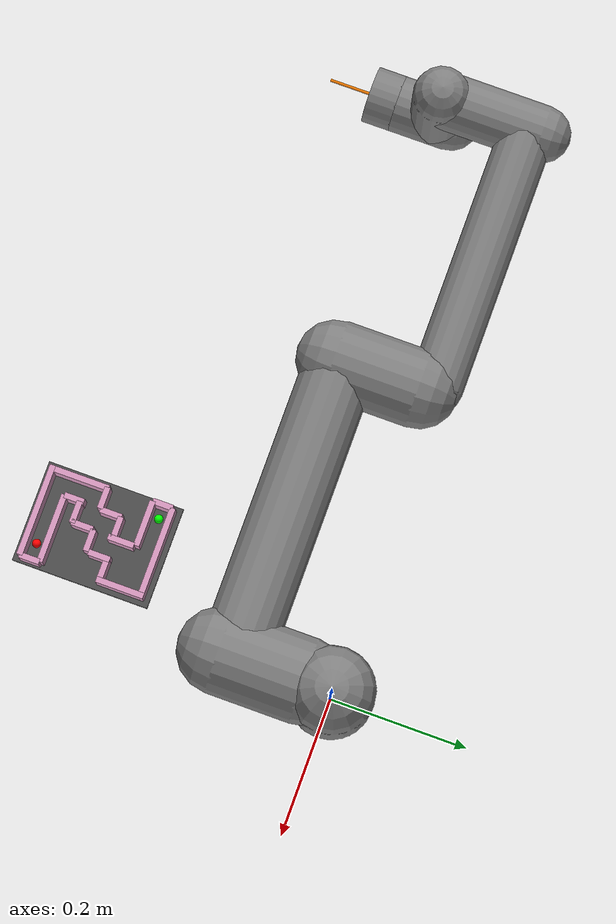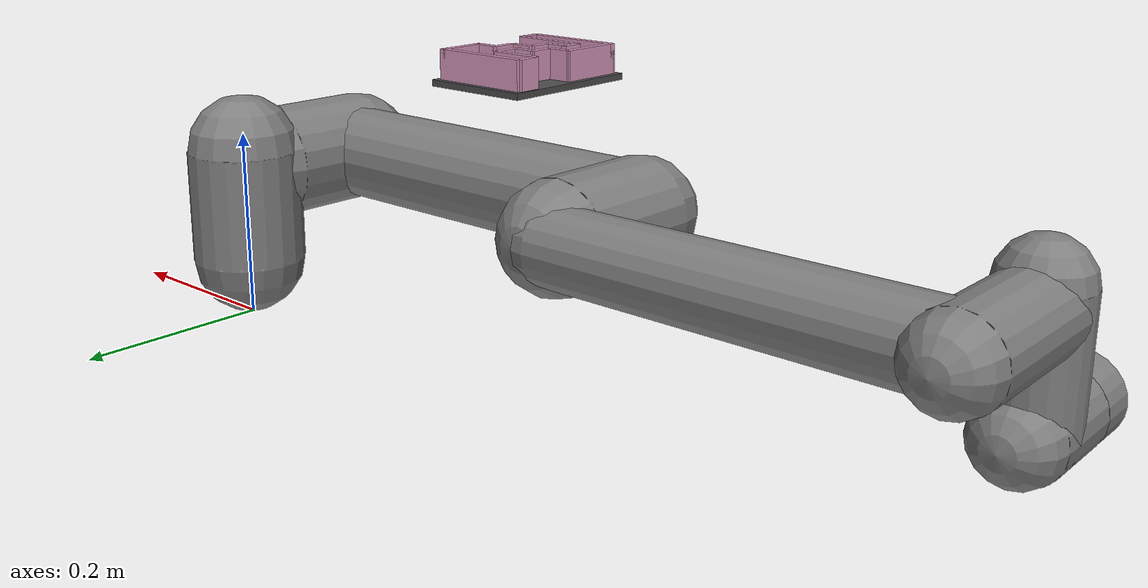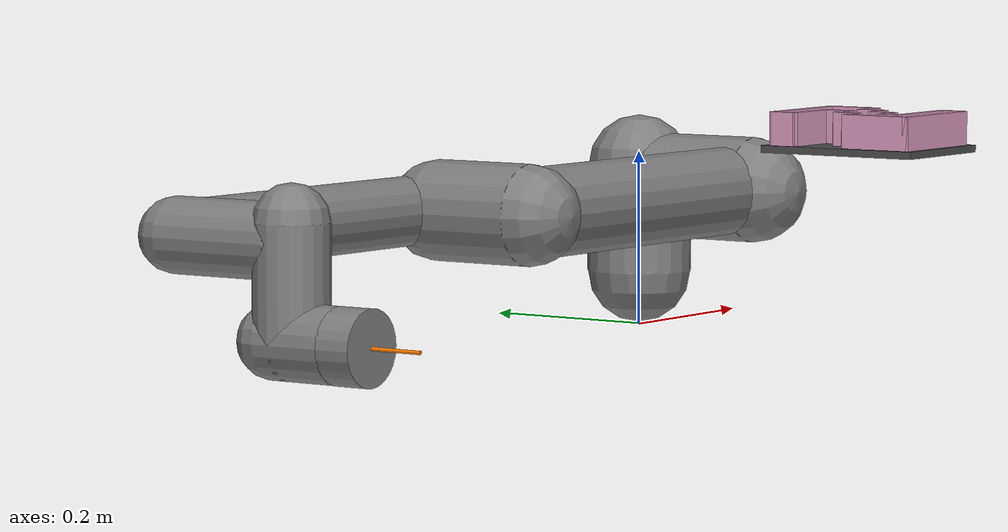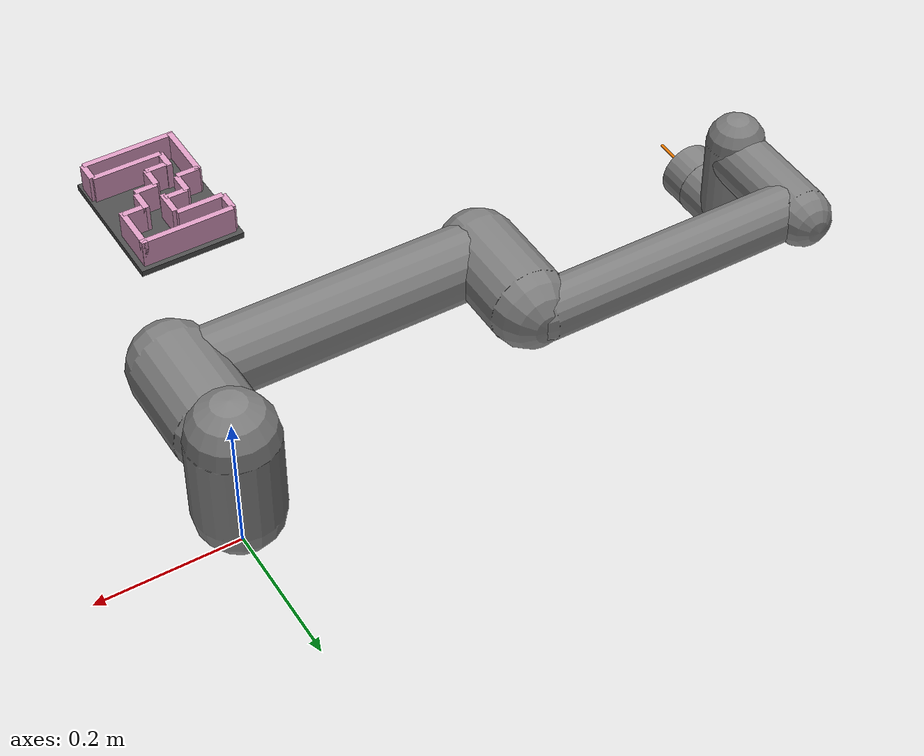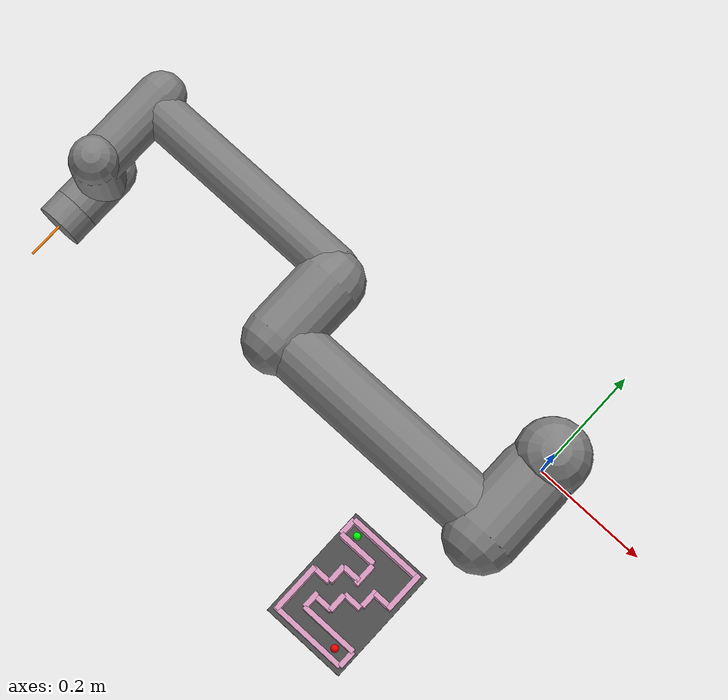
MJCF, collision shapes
<mujoco model="ur5e_zmaze">
  <compiler angle="radian"
            meshdir="C:/Users/adith/Desktop/Uni/Gituni/Y3/2306514_COMP303/Comp303 Dis/Mujoco/universal_robots_ur5e/assets"
            autolimits="true"/>

  <option integrator="implicitfast" timestep="0.002">
    <flag contact="enable"/>
  </option>

  <size nconmax="200" njmax="500"/>

  <default>
    <default class="ur5e">
      <material specular="0.5" shininess="0.25"/>
      <joint axis="0 1 0" range="-6.28319 6.28319" armature="0.1"/>
      <general gaintype="fixed" biastype="affine" ctrlrange="-6.2831 6.2831"
        gainprm="2000" biasprm="0 -2000 -400" forcerange="-150 150"/>
      <default class="size3">
        <default class="size3_limited">
          <joint range="-3.1415 3.1415"/>
          <general ctrlrange="-3.1415 3.1415"/>
        </default>
      </default>
      <default class="size1">
        <general gainprm="500" biasprm="0 -500 -100" forcerange="-28 28"/>
      </default>
      <default class="visual">
        <geom type="mesh" contype="0" conaffinity="0" group="2"/>
      </default>
      <default class="collision">
        <geom type="capsule" group="3" contype="1" conaffinity="0"/>
        <default class="eef_collision">
          <geom type="cylinder" contype="1" conaffinity="0"/>
        </default>
      </default>
      <site size="0.001" rgba="0.5 0.5 0.5 0.3" group="4"/>
    </default>
  </default>

  <asset>
    <material class="ur5e" name="black"     rgba="0.033 0.033 0.033 1"/>
    <material class="ur5e" name="jointgray" rgba="0.278 0.278 0.278 1"/>
    <material class="ur5e" name="linkgray"  rgba="0.82 0.82 0.82 1"/>
    <material class="ur5e" name="urblue"    rgba="0.49 0.678 0.8 1"/>
    <mesh file="base_0.obj"/>
    <mesh file="base_1.obj"/>
    <mesh file="shoulder_0.obj"/>
    <mesh file="shoulder_1.obj"/>
    <mesh file="shoulder_2.obj"/>
    <mesh file="upperarm_0.obj"/>
    <mesh file="upperarm_1.obj"/>
    <mesh file="upperarm_2.obj"/>
    <mesh file="upperarm_3.obj"/>
    <mesh file="forearm_0.obj"/>
    <mesh file="forearm_1.obj"/>
    <mesh file="forearm_2.obj"/>
    <mesh file="forearm_3.obj"/>
    <mesh file="wrist1_0.obj"/>
    <mesh file="wrist1_1.obj"/>
    <mesh file="wrist1_2.obj"/>
    <mesh file="wrist2_0.obj"/>
    <mesh file="wrist2_1.obj"/>
    <mesh file="wrist2_2.obj"/>
    <mesh file="wrist3.obj"/>
  </asset>

  <worldbody>
    <light name="spotlight" mode="targetbodycom" target="wrist_2_link" pos="0 -1 2"/>

    <body name="base" quat="0 0 0 -1" childclass="ur5e">
      <inertial mass="4.0" pos="0 0 0" diaginertia="0.00443333156 0.00443333156 0.0072"/>
      <geom mesh="base_0" material="black" class="visual"/>
      <geom mesh="base_1" material="jointgray" class="visual"/>

      <body name="shoulder_link" pos="0 0 0.163">
        <inertial mass="3.7" pos="0 0 0" diaginertia="0.0102675 0.0102675 0.00666"/>
        <joint name="shoulder_pan_joint" class="size3" axis="0 0 1"/>
        <geom mesh="shoulder_0" material="urblue" class="visual"/>
        <geom mesh="shoulder_1" material="black" class="visual"/>
        <geom mesh="shoulder_2" material="jointgray" class="visual"/>
        <geom name="shoulder_col" class="collision" size="0.06 0.06" pos="0 0 -0.04"/>

        <body name="upper_arm_link" pos="0 0.138 0" quat="1 0 1 0">
          <inertial mass="8.393" pos="0 0 0.2125" diaginertia="0.133886 0.133886 0.0151074"/>
          <joint name="shoulder_lift_joint" class="size3"/>
          <geom mesh="upperarm_0" material="linkgray" class="visual"/>
          <geom mesh="upperarm_1" material="black" class="visual"/>
          <geom mesh="upperarm_2" material="jointgray" class="visual"/>
          <geom mesh="upperarm_3" material="urblue" class="visual"/>
          <geom name="upperarm_col0" class="collision" pos="0 -0.04 0" quat="1 1 0 0" size="0.06 0.06"/>
          <geom name="upperarm_col1" class="collision" size="0.05 0.2" pos="0 0 0.2"/>

          <body name="forearm_link" pos="0 -0.131 0.425">
            <inertial mass="2.275" pos="0 0 0.196" diaginertia="0.0311796 0.0311796 0.004095"/>
            <joint name="elbow_joint" class="size3_limited"/>
            <geom mesh="forearm_0" material="urblue" class="visual"/>
            <geom mesh="forearm_1" material="linkgray" class="visual"/>
            <geom mesh="forearm_2" material="black" class="visual"/>
            <geom mesh="forearm_3" material="jointgray" class="visual"/>
            <geom name="forearm_col0" class="collision" pos="0 0.08 0" quat="1 1 0 0" size="0.055 0.06"/>
            <geom name="forearm_col1" class="collision" size="0.038 0.19" pos="0 0 0.2"/>

            <body name="wrist_1_link" pos="0 0 0.392" quat="1 0 1 0">
              <inertial mass="1.219" pos="0 0.127 0" diaginertia="0.0025599 0.0025599 0.0021942"/>
              <joint name="wrist_1_joint" class="size1"/>
              <geom mesh="wrist1_0" material="black" class="visual"/>
              <geom mesh="wrist1_1" material="urblue" class="visual"/>
              <geom mesh="wrist1_2" material="jointgray" class="visual"/>
              <geom name="wrist1_col" class="collision" pos="0 0.05 0" quat="1 1 0 0" size="0.04 0.07"/>

              <body name="wrist_2_link" pos="0 0.127 0">
                <inertial mass="1.219" pos="0 0 0.1" diaginertia="0.0025599 0.0025599 0.0021942"/>
                <joint name="wrist_2_joint" axis="0 0 1" class="size1"/>
                <geom mesh="wrist2_0" material="black" class="visual"/>
                <geom mesh="wrist2_1" material="urblue" class="visual"/>
                <geom mesh="wrist2_2" material="jointgray" class="visual"/>
                <geom name="wrist2_col0" class="collision" size="0.04 0.06" pos="0 0 0.04"/>
                <geom name="wrist2_col1" class="collision" pos="0 0.02 0.1" quat="1 1 0 0" size="0.04 0.04"/>

                <body name="wrist_3_link" pos="0 0 0.1">
                  <inertial mass="0.1889" pos="0 0.0771683 0" quat="1 0 0 1"
                            diaginertia="0.000132134 9.90863e-05 9.90863e-05"/>
                  <joint name="wrist_3_joint" class="size1"/>
                  <geom material="linkgray" mesh="wrist3" class="visual"/>
                  <geom name="eef_col" class="eef_collision" pos="0 0.08 0" quat="1 1 0 0" size="0.04 0.02"/>
                  <site name="attachment_site" pos="0 0.1 0" quat="-1 1 0 0"/>

                  <body name="touch_probe" pos="0 0.1 0" quat="-1 1 0 0">
                    <geom name="probe" type="cylinder"
                          size="0.002 0.060"
                          rgba="1 0.5 0 1"
                          contype="1" conaffinity="1"
                          condim="3" friction="0.3 0.1 0.1"
                          mass="0.02"/>
                    <site name="probe_tip" pos="0 0 0.060" size="0.003" rgba="1 1 0 1"/>
                  </body>
                </body>
              </body>
            </body>
          </body>
        </body>
      </body>
    </body>

   <body name="zmaze" pos="0 0 0">
  <geom name="z_top_w1" type="box" pos="-0.1165 -0.304 0.244" size="0.0315 0.004 0.020" rgba="0.85 0.60 0.75 1" contype="1" conaffinity="1"/>
  <geom name="z_top_w2" type="box" pos="-0.085 -0.276 0.244" size="0.063 0.004 0.020" rgba="0.85 0.60 0.75 1" contype="1" conaffinity="1"/>
  <geom name="z_top_cap" type="box" pos="-0.148 -0.290 0.244" size="0.004 0.014 0.020" rgba="0.85 0.60 0.75 1" contype="1" conaffinity="1"/>

  <geom name="z_rd_rw" type="box" pos="-0.026 -0.305 0.244" size="0.004 0.033 0.020" rgba="0.85 0.60 0.75 1" contype="1" conaffinity="1"/>

  <geom name="z_mid_w1" type="box" pos="-0.040 -0.334 0.244" size="0.015 0.004 0.020" rgba="0.85 0.60 0.75 1" contype="1" conaffinity="1"/>

  <geom name="z_ld_lw" type="box" pos="-0.084 -0.325 0.244" size="0.004 0.018 0.020" rgba="0.85 0.60 0.75 1" contype="1" conaffinity="1"/>
  <geom name="z_ld_rw" type="box" pos="-0.056 -0.345 0.244" size="0.004 0.015 0.020" rgba="0.85 0.60 0.75 1" contype="1" conaffinity="1"/>

  <geom name="z_s2h_w1" type="box" pos="-0.071 -0.364 0.244" size="0.015 0.004 0.020" rgba="0.85 0.60 0.75 1" contype="1" conaffinity="1"/>
  <geom name="z_s2h_w2" type="box" pos="-0.099 -0.336 0.244" size="0.015 0.004 0.020" rgba="0.85 0.60 0.75 1" contype="1" conaffinity="1"/>

  <geom name="z_s3v_lw" type="box" pos="-0.114 -0.350 0.244" size="0.004 0.015 0.020" rgba="0.85 0.60 0.75 1" contype="1" conaffinity="1"/>
  <geom name="z_s3v_rw" type="box" pos="-0.086 -0.380 0.244" size="0.004 0.015 0.020" rgba="0.85 0.60 0.75 1" contype="1" conaffinity="1"/>

  <geom name="z_s3h_w1" type="box" pos="-0.100 -0.394 0.244" size="0.015 0.004 0.020" rgba="0.85 0.60 0.75 1" contype="1" conaffinity="1"/>
  <geom name="z_s3h_w2" type="box" pos="-0.130 -0.366 0.244" size="0.015 0.004 0.020" rgba="0.85 0.60 0.75 1" contype="1" conaffinity="1"/>

  <geom name="z_s4v_lw" type="box" pos="-0.144 -0.405 0.244" size="0.004 0.041 0.020" rgba="0.85 0.60 0.75 1" contype="1" conaffinity="1"/>
  <geom name="z_s4v_rw" type="box" pos="-0.116 -0.402333 0.244" size="0.004 0.013667 0.020" rgba="0.85 0.60 0.75 1" contype="1" conaffinity="1"/>

  <geom name="z_bot_w1" type="box" pos="-0.085 -0.444 0.244" size="0.063 0.004 0.020" rgba="0.85 0.60 0.75 1" contype="1" conaffinity="1"/>
  <geom name="z_bot_w2" type="box" pos="-0.06925 -0.416 0.244" size="0.04725 0.004 0.020" rgba="0.85 0.60 0.75 1" contype="1" conaffinity="1"/>
  <geom name="z_bot_cap" type="box" pos="-0.022 -0.430 0.244" size="0.004 0.014 0.020" rgba="0.85 0.60 0.75 1" contype="1" conaffinity="1"/>

  <geom name="z_floor" type="box" pos="-0.085 -0.360 0.223" size="0.070 0.095 0.004" rgba="0.30 0.30 0.30 1" contype="2" conaffinity="2"/>

  <site name="start" pos="-0.130 -0.290 0.244" size="0.006" rgba="0 1 0 1" group="1"/>
  <site name="goal"  pos="-0.045 -0.430 0.244" size="0.006" rgba="1 0 0 1" group="1"/>
</body>
  </worldbody>

  <actuator>
    <general class="size3"         name="shoulder_pan"  joint="shoulder_pan_joint"/>
    <general class="size3"         name="shoulder_lift" joint="shoulder_lift_joint"/>
    <general class="size3_limited" name="elbow"         joint="elbow_joint"/>
    <general class="size1"         name="wrist_1"       joint="wrist_1_joint"/>
    <general class="size1"         name="wrist_2"       joint="wrist_2_joint"/>
    <general class="size1"         name="wrist_3"       joint="wrist_3_joint"/>
  </actuator>

  <sensor>
    <touch name="probe_force" site="probe_tip"/>
  </sensor>

  <keyframe>
    <key name="home"
      qpos="-1.6378 -1.2788 -2.4707 -0.9634 1.5699 -0.0670"
      ctrl="-1.6378 -1.2788 -2.4707 -0.9634 1.5699 -0.0670"/>
  </keyframe>
</mujoco>
